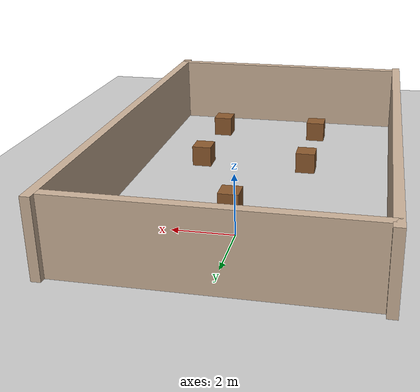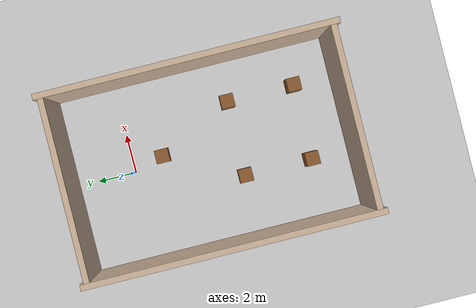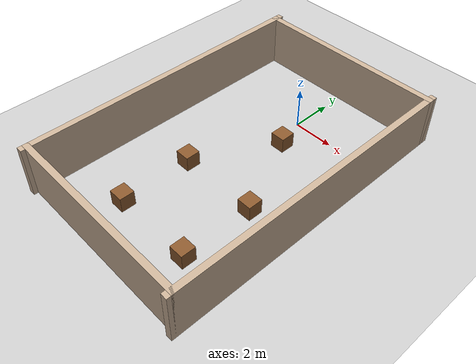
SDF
<?xml version="1.0"?>
<sdf version="1.6">
  <world name="cafe_world">

    <include><uri>model://sun</uri></include>
    <include><uri>model://ground_plane</uri></include>

    <physics type="ode">
      <real_time_update_rate>1000</real_time_update_rate>
      <max_step_size>0.001</max_step_size>
    </physics>

    <!-- ── outer walls ──────────────────────────────────────────────────── -->
    <model name="wall_west">
      <static>true</static>
      <pose>-4.65 -4.0 1.25 0 0 0</pose>
      <link name="link">
        <collision name="col"><geometry><box><size>0.3 15.0 2.5</size></box></geometry></collision>
        <visual name="vis">
          <geometry><box><size>0.3 15.0 2.5</size></box></geometry>
          <material><ambient>0.8 0.7 0.6 1</ambient><diffuse>0.8 0.7 0.6 1</diffuse></material>
        </visual>
      </link>
    </model>

    <model name="wall_east">
      <static>true</static>
      <pose>4.65 -4.0 1.25 0 0 0</pose>
      <link name="link">
        <collision name="col"><geometry><box><size>0.3 15.0 2.5</size></box></geometry></collision>
        <visual name="vis">
          <geometry><box><size>0.3 15.0 2.5</size></box></geometry>
          <material><ambient>0.8 0.7 0.6 1</ambient><diffuse>0.8 0.7 0.6 1</diffuse></material>
        </visual>
      </link>
    </model>

    <model name="wall_north">
      <static>true</static>
      <pose>0.0 3.15 1.25 0 0 0</pose>
      <link name="link">
        <collision name="col"><geometry><box><size>9.6 0.3 2.5</size></box></geometry></collision>
        <visual name="vis">
          <geometry><box><size>9.6 0.3 2.5</size></box></geometry>
          <material><ambient>0.8 0.7 0.6 1</ambient><diffuse>0.8 0.7 0.6 1</diffuse></material>
        </visual>
      </link>
    </model>

    <model name="wall_south">
      <static>true</static>
      <pose>0.0 -11.15 1.25 0 0 0</pose>
      <link name="link">
        <collision name="col"><geometry><box><size>9.6 0.3 2.5</size></box></geometry></collision>
        <visual name="vis">
          <geometry><box><size>9.6 0.3 2.5</size></box></geometry>
          <material><ambient>0.8 0.7 0.6 1</ambient><diffuse>0.8 0.7 0.6 1</diffuse></material>
        </visual>
      </link>
    </model>

    <!-- ── tables ───────────────────────────────────────────────────────── -->
    <model name="table1">
      <static>true</static>
      <pose>0.5 -1.6 0.375 0 0 0</pose>
      <link name="link">
        <collision name="col"><geometry><box><size>0.7 0.7 0.75</size></box></geometry></collision>
        <visual name="vis">
          <geometry><box><size>0.7 0.7 0.75</size></box></geometry>
          <material><ambient>0.55 0.35 0.18 1</ambient><diffuse>0.55 0.35 0.18 1</diffuse></material>
        </visual>
      </link>
    </model>

    <model name="table2">
      <static>true</static>
      <pose>2.4 -5.5 0.375 0 0 0</pose>
      <link name="link">
        <collision name="col"><geometry><box><size>0.7 0.7 0.75</size></box></geometry></collision>
        <visual name="vis">
          <geometry><box><size>0.7 0.7 0.75</size></box></geometry>
          <material><ambient>0.55 0.35 0.18 1</ambient><diffuse>0.55 0.35 0.18 1</diffuse></material>
        </visual>
      </link>
    </model>

    <model name="table3">
      <static>true</static>
      <pose>-1.5 -5.5 0.375 0 0 0</pose>
      <link name="link">
        <collision name="col"><geometry><box><size>0.7 0.7 0.75</size></box></geometry></collision>
        <visual name="vis">
          <geometry><box><size>0.7 0.7 0.75</size></box></geometry>
          <material><ambient>0.55 0.35 0.18 1</ambient><diffuse>0.55 0.35 0.18 1</diffuse></material>
        </visual>
      </link>
    </model>

    <model name="table4">
      <static>true</static>
      <pose>2.4 -9.0 0.375 0 0 0</pose>
      <link name="link">
        <collision name="col"><geometry><box><size>0.7 0.7 0.75</size></box></geometry></collision>
        <visual name="vis">
          <geometry><box><size>0.7 0.7 0.75</size></box></geometry>
          <material><ambient>0.55 0.35 0.18 1</ambient><diffuse>0.55 0.35 0.18 1</diffuse></material>
        </visual>
      </link>
    </model>

    <model name="table5">
      <static>true</static>
      <pose>-1.5 -9.0 0.375 0 0 0</pose>
      <link name="link">
        <collision name="col"><geometry><box><size>0.7 0.7 0.75</size></box></geometry></collision>
        <visual name="vis">
          <geometry><box><size>0.7 0.7 0.75</size></box></geometry>
          <material><ambient>0.55 0.35 0.18 1</ambient><diffuse>0.55 0.35 0.18 1</diffuse></material>
        </visual>
      </link>
    </model>

  </world>
</sdf>
